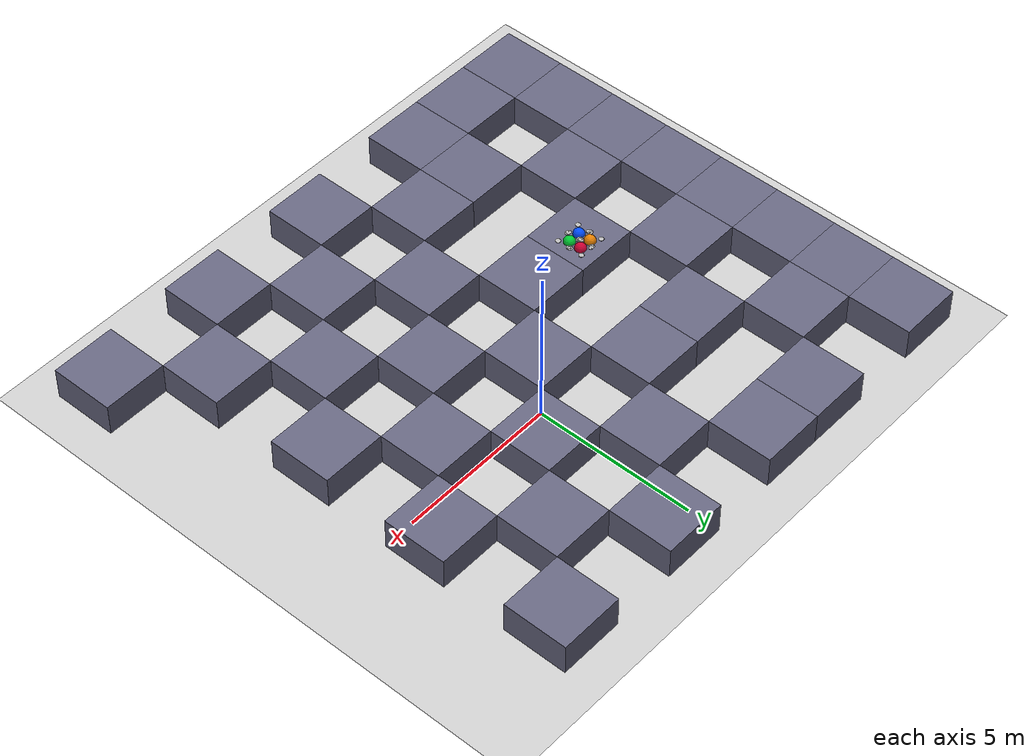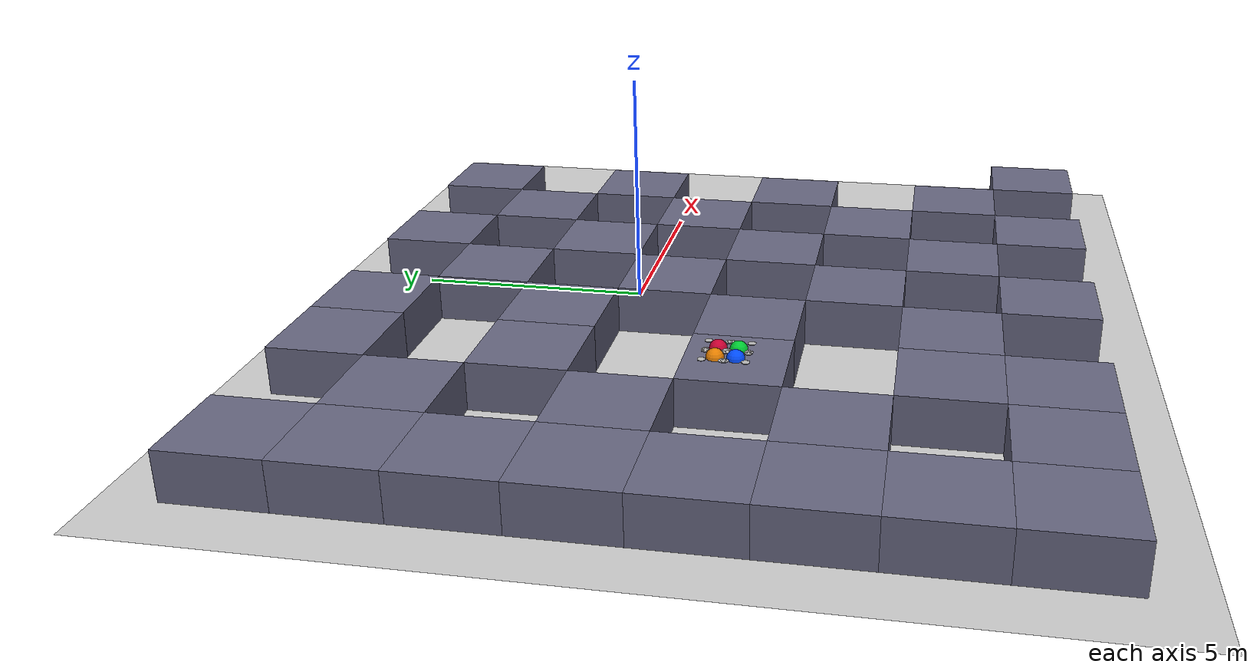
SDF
<?xml version="1.0" ?>
<sdf version="1.8">
  <world name="stage_4_challenging.sdf">

    <!-- Physics -->
    <physics name="2ms" type="ignored">
      <max_step_size>0.002</max_step_size>
      <real_time_factor>0</real_time_factor>
    </physics>

    <!-- Plugins -->
    <plugin filename="gz-sim-physics-system" name="gz::sim::systems::Physics"/>
    <plugin filename="gz-sim-user-commands-system" name="gz::sim::systems::UserCommands"/>
    <plugin filename="gz-sim-sensors-system" name="gz::sim::systems::Sensors">
      <render_engine>ogre2</render_engine>
    </plugin>
    <plugin filename="gz-sim-imu-system" name="gz::sim::systems::Imu"/>

    <!-- Lighting -->
    <light type="directional" name="sun">
      <cast_shadows>true</cast_shadows>
      <pose>0 0 10 0 0 0</pose>
      <diffuse>0.8 0.8 0.8 1</diffuse>
      <specular>0.2 0.2 0.2 1</specular>
      <attenuation>
        <range>1000</range>
        <constant>0.9</constant>
        <linear>0.01</linear>
        <quadratic>0.001</quadratic>
      </attenuation>
      <direction>-0.5 0.1 -0.9</direction>
    </light>

    <!-- Ground Plane -->
    <model name="ground_plane">
      <static>true</static>
      <link name="link">
        <collision name="collision">
          <geometry>
            <plane>
              <normal>0 0 1</normal>
              <size>200 200</size>
            </plane>
          </geometry>
        </collision>
        <visual name="visual">
          <geometry>
            <plane>
              <normal>0 0 1</normal>
              <size>200 200</size>
            </plane>
          </geometry>
          <material>
            <ambient>0.8 0.8 0.8 1</ambient>
            <diffuse>0.8 0.8 0.8 1</diffuse>
          </material>
        </visual>
      </link>
    </model>

    <!-- Challenging difficulty maze walls (38 walls) -->
    <model name="wall_0">
      <static>true</static>
      <pose>-9.0 -9.0 0.5 0 0 0</pose>
      <link name="link">
        <collision name="collision">
          <geometry>
            <box>
              <size>2.0 2.0 1.0</size>
            </box>
          </geometry>
        </collision>
        <visual name="visual">
          <geometry>
            <box>
              <size>2.0 2.0 1.0</size>
            </box>
          </geometry>
          <material>
            <ambient>0.3 0.3 0.4 1</ambient>
            <diffuse>0.4 0.4 0.5 1</diffuse>
          </material>
        </visual>
      </link>
    </model>

    <model name="wall_1">
      <static>true</static>
      <pose>-9.0 -7.0 0.5 0 0 0</pose>
      <link name="link">
        <collision name="collision">
          <geometry>
            <box>
              <size>2.0 2.0 1.0</size>
            </box>
          </geometry>
        </collision>
        <visual name="visual">
          <geometry>
            <box>
              <size>2.0 2.0 1.0</size>
            </box>
          </geometry>
          <material>
            <ambient>0.3 0.3 0.4 1</ambient>
            <diffuse>0.4 0.4 0.5 1</diffuse>
          </material>
        </visual>
      </link>
    </model>

    <model name="wall_2">
      <static>true</static>
      <pose>-9.0 -5.0 0.5 0 0 0</pose>
      <link name="link">
        <collision name="collision">
          <geometry>
            <box>
              <size>2.0 2.0 1.0</size>
            </box>
          </geometry>
        </collision>
        <visual name="visual">
          <geometry>
            <box>
              <size>2.0 2.0 1.0</size>
            </box>
          </geometry>
          <material>
            <ambient>0.3 0.3 0.4 1</ambient>
            <diffuse>0.4 0.4 0.5 1</diffuse>
          </material>
        </visual>
      </link>
    </model>

    <model name="wall_3">
      <static>true</static>
      <pose>-9.0 -3.0 0.5 0 0 0</pose>
      <link name="link">
        <collision name="collision">
          <geometry>
            <box>
              <size>2.0 2.0 1.0</size>
            </box>
          </geometry>
        </collision>
        <visual name="visual">
          <geometry>
            <box>
              <size>2.0 2.0 1.0</size>
            </box>
          </geometry>
          <material>
            <ambient>0.3 0.3 0.4 1</ambient>
            <diffuse>0.4 0.4 0.5 1</diffuse>
          </material>
        </visual>
      </link>
    </model>

    <model name="wall_4">
      <static>true</static>
      <pose>-9.0 -1.0 0.5 0 0 0</pose>
      <link name="link">
        <collision name="collision">
          <geometry>
            <box>
              <size>2.0 2.0 1.0</size>
            </box>
          </geometry>
        </collision>
        <visual name="visual">
          <geometry>
            <box>
              <size>2.0 2.0 1.0</size>
            </box>
          </geometry>
          <material>
            <ambient>0.3 0.3 0.4 1</ambient>
            <diffuse>0.4 0.4 0.5 1</diffuse>
          </material>
        </visual>
      </link>
    </model>

    <model name="wall_5">
      <static>true</static>
      <pose>-9.0 1.0 0.5 0 0 0</pose>
      <link name="link">
        <collision name="collision">
          <geometry>
            <box>
              <size>2.0 2.0 1.0</size>
            </box>
          </geometry>
        </collision>
        <visual name="visual">
          <geometry>
            <box>
              <size>2.0 2.0 1.0</size>
            </box>
          </geometry>
          <material>
            <ambient>0.3 0.3 0.4 1</ambient>
            <diffuse>0.4 0.4 0.5 1</diffuse>
          </material>
        </visual>
      </link>
    </model>

    <model name="wall_6">
      <static>true</static>
      <pose>-9.0 3.0 0.5 0 0 0</pose>
      <link name="link">
        <collision name="collision">
          <geometry>
            <box>
              <size>2.0 2.0 1.0</size>
            </box>
          </geometry>
        </collision>
        <visual name="visual">
          <geometry>
            <box>
              <size>2.0 2.0 1.0</size>
            </box>
          </geometry>
          <material>
            <ambient>0.3 0.3 0.4 1</ambient>
            <diffuse>0.4 0.4 0.5 1</diffuse>
          </material>
        </visual>
      </link>
    </model>

    <model name="wall_7">
      <static>true</static>
      <pose>-9.0 5.0 0.5 0 0 0</pose>
      <link name="link">
        <collision name="collision">
          <geometry>
            <box>
              <size>2.0 2.0 1.0</size>
            </box>
          </geometry>
        </collision>
        <visual name="visual">
          <geometry>
            <box>
              <size>2.0 2.0 1.0</size>
            </box>
          </geometry>
          <material>
            <ambient>0.3 0.3 0.4 1</ambient>
            <diffuse>0.4 0.4 0.5 1</diffuse>
          </material>
        </visual>
      </link>
    </model>

    <model name="wall_8">
      <static>true</static>
      <pose>-7.0 -9.0 0.5 0 0 0</pose>
      <link name="link">
        <collision name="collision">
          <geometry>
            <box>
              <size>2.0 2.0 1.0</size>
            </box>
          </geometry>
        </collision>
        <visual name="visual">
          <geometry>
            <box>
              <size>2.0 2.0 1.0</size>
            </box>
          </geometry>
          <material>
            <ambient>0.3 0.3 0.4 1</ambient>
            <diffuse>0.4 0.4 0.5 1</diffuse>
          </material>
        </visual>
      </link>
    </model>

    <model name="wall_9">
      <static>true</static>
      <pose>-7.0 -5.0 0.5 0 0 0</pose>
      <link name="link">
        <collision name="collision">
          <geometry>
            <box>
              <size>2.0 2.0 1.0</size>
            </box>
          </geometry>
        </collision>
        <visual name="visual">
          <geometry>
            <box>
              <size>2.0 2.0 1.0</size>
            </box>
          </geometry>
          <material>
            <ambient>0.3 0.3 0.4 1</ambient>
            <diffuse>0.4 0.4 0.5 1</diffuse>
          </material>
        </visual>
      </link>
    </model>

    <model name="wall_10">
      <static>true</static>
      <pose>-7.0 -1.0 0.5 0 0 0</pose>
      <link name="link">
        <collision name="collision">
          <geometry>
            <box>
              <size>2.0 2.0 1.0</size>
            </box>
          </geometry>
        </collision>
        <visual name="visual">
          <geometry>
            <box>
              <size>2.0 2.0 1.0</size>
            </box>
          </geometry>
          <material>
            <ambient>0.3 0.3 0.4 1</ambient>
            <diffuse>0.4 0.4 0.5 1</diffuse>
          </material>
        </visual>
      </link>
    </model>

    <model name="wall_11">
      <static>true</static>
      <pose>-7.0 3.0 0.5 0 0 0</pose>
      <link name="link">
        <collision name="collision">
          <geometry>
            <box>
              <size>2.0 2.0 1.0</size>
            </box>
          </geometry>
        </collision>
        <visual name="visual">
          <geometry>
            <box>
              <size>2.0 2.0 1.0</size>
            </box>
          </geometry>
          <material>
            <ambient>0.3 0.3 0.4 1</ambient>
            <diffuse>0.4 0.4 0.5 1</diffuse>
          </material>
        </visual>
      </link>
    </model>

    <model name="wall_12">
      <static>true</static>
      <pose>-5.0 -9.0 0.5 0 0 0</pose>
      <link name="link">
        <collision name="collision">
          <geometry>
            <box>
              <size>2.0 2.0 1.0</size>
            </box>
          </geometry>
        </collision>
        <visual name="visual">
          <geometry>
            <box>
              <size>2.0 2.0 1.0</size>
            </box>
          </geometry>
          <material>
            <ambient>0.3 0.3 0.4 1</ambient>
            <diffuse>0.4 0.4 0.5 1</diffuse>
          </material>
        </visual>
      </link>
    </model>

    <model name="wall_13">
      <static>true</static>
      <pose>-5.0 -7.0 0.5 0 0 0</pose>
      <link name="link">
        <collision name="collision">
          <geometry>
            <box>
              <size>2.0 2.0 1.0</size>
            </box>
          </geometry>
        </collision>
        <visual name="visual">
          <geometry>
            <box>
              <size>2.0 2.0 1.0</size>
            </box>
          </geometry>
          <material>
            <ambient>0.3 0.3 0.4 1</ambient>
            <diffuse>0.4 0.4 0.5 1</diffuse>
          </material>
        </visual>
      </link>
    </model>

    <model name="wall_14">
      <static>true</static>
      <pose>-5.0 -3.0 0.5 0 0 0</pose>
      <link name="link">
        <collision name="collision">
          <geometry>
            <box>
              <size>2.0 2.0 1.0</size>
            </box>
          </geometry>
        </collision>
        <visual name="visual">
          <geometry>
            <box>
              <size>2.0 2.0 1.0</size>
            </box>
          </geometry>
          <material>
            <ambient>0.3 0.3 0.4 1</ambient>
            <diffuse>0.4 0.4 0.5 1</diffuse>
          </material>
        </visual>
      </link>
    </model>

    <model name="wall_15">
      <static>true</static>
      <pose>-5.0 1.0 0.5 0 0 0</pose>
      <link name="link">
        <collision name="collision">
          <geometry>
            <box>
              <size>2.0 2.0 1.0</size>
            </box>
          </geometry>
        </collision>
        <visual name="visual">
          <geometry>
            <box>
              <size>2.0 2.0 1.0</size>
            </box>
          </geometry>
          <material>
            <ambient>0.3 0.3 0.4 1</ambient>
            <diffuse>0.4 0.4 0.5 1</diffuse>
          </material>
        </visual>
      </link>
    </model>

    <model name="wall_16">
      <static>true</static>
      <pose>-5.0 5.0 0.5 0 0 0</pose>
      <link name="link">
        <collision name="collision">
          <geometry>
            <box>
              <size>2.0 2.0 1.0</size>
            </box>
          </geometry>
        </collision>
        <visual name="visual">
          <geometry>
            <box>
              <size>2.0 2.0 1.0</size>
            </box>
          </geometry>
          <material>
            <ambient>0.3 0.3 0.4 1</ambient>
            <diffuse>0.4 0.4 0.5 1</diffuse>
          </material>
        </visual>
      </link>
    </model>

    <model name="wall_17">
      <static>true</static>
      <pose>-3.0 -7.0 0.5 0 0 0</pose>
      <link name="link">
        <collision name="collision">
          <geometry>
            <box>
              <size>2.0 2.0 1.0</size>
            </box>
          </geometry>
        </collision>
        <visual name="visual">
          <geometry>
            <box>
              <size>2.0 2.0 1.0</size>
            </box>
          </geometry>
          <material>
            <ambient>0.3 0.3 0.4 1</ambient>
            <diffuse>0.4 0.4 0.5 1</diffuse>
          </material>
        </visual>
      </link>
    </model>

    <model name="wall_18">
      <static>true</static>
      <pose>-3.0 -3.0 0.5 0 0 0</pose>
      <link name="link">
        <collision name="collision">
          <geometry>
            <box>
              <size>2.0 2.0 1.0</size>
            </box>
          </geometry>
        </collision>
        <visual name="visual">
          <geometry>
            <box>
              <size>2.0 2.0 1.0</size>
            </box>
          </geometry>
          <material>
            <ambient>0.3 0.3 0.4 1</ambient>
            <diffuse>0.4 0.4 0.5 1</diffuse>
          </material>
        </visual>
      </link>
    </model>

    <model name="wall_19">
      <static>true</static>
      <pose>-3.0 1.0 0.5 0 0 0</pose>
      <link name="link">
        <collision name="collision">
          <geometry>
            <box>
              <size>2.0 2.0 1.0</size>
            </box>
          </geometry>
        </collision>
        <visual name="visual">
          <geometry>
            <box>
              <size>2.0 2.0 1.0</size>
            </box>
          </geometry>
          <material>
            <ambient>0.3 0.3 0.4 1</ambient>
            <diffuse>0.4 0.4 0.5 1</diffuse>
          </material>
        </visual>
      </link>
    </model>

    <model name="wall_20">
      <static>true</static>
      <pose>-3.0 5.0 0.5 0 0 0</pose>
      <link name="link">
        <collision name="collision">
          <geometry>
            <box>
              <size>2.0 2.0 1.0</size>
            </box>
          </geometry>
        </collision>
        <visual name="visual">
          <geometry>
            <box>
              <size>2.0 2.0 1.0</size>
            </box>
          </geometry>
          <material>
            <ambient>0.3 0.3 0.4 1</ambient>
            <diffuse>0.4 0.4 0.5 1</diffuse>
          </material>
        </visual>
      </link>
    </model>

    <model name="wall_21">
      <static>true</static>
      <pose>-1.0 -9.0 0.5 0 0 0</pose>
      <link name="link">
        <collision name="collision">
          <geometry>
            <box>
              <size>2.0 2.0 1.0</size>
            </box>
          </geometry>
        </collision>
        <visual name="visual">
          <geometry>
            <box>
              <size>2.0 2.0 1.0</size>
            </box>
          </geometry>
          <material>
            <ambient>0.3 0.3 0.4 1</ambient>
            <diffuse>0.4 0.4 0.5 1</diffuse>
          </material>
        </visual>
      </link>
    </model>

    <model name="wall_22">
      <static>true</static>
      <pose>-1.0 -5.0 0.5 0 0 0</pose>
      <link name="link">
        <collision name="collision">
          <geometry>
            <box>
              <size>2.0 2.0 1.0</size>
            </box>
          </geometry>
        </collision>
        <visual name="visual">
          <geometry>
            <box>
              <size>2.0 2.0 1.0</size>
            </box>
          </geometry>
          <material>
            <ambient>0.3 0.3 0.4 1</ambient>
            <diffuse>0.4 0.4 0.5 1</diffuse>
          </material>
        </visual>
      </link>
    </model>

    <model name="wall_23">
      <static>true</static>
      <pose>-1.0 -1.0 0.5 0 0 0</pose>
      <link name="link">
        <collision name="collision">
          <geometry>
            <box>
              <size>2.0 2.0 1.0</size>
            </box>
          </geometry>
        </collision>
        <visual name="visual">
          <geometry>
            <box>
              <size>2.0 2.0 1.0</size>
            </box>
          </geometry>
          <material>
            <ambient>0.3 0.3 0.4 1</ambient>
            <diffuse>0.4 0.4 0.5 1</diffuse>
          </material>
        </visual>
      </link>
    </model>

    <model name="wall_24">
      <static>true</static>
      <pose>-1.0 3.0 0.5 0 0 0</pose>
      <link name="link">
        <collision name="collision">
          <geometry>
            <box>
              <size>2.0 2.0 1.0</size>
            </box>
          </geometry>
        </collision>
        <visual name="visual">
          <geometry>
            <box>
              <size>2.0 2.0 1.0</size>
            </box>
          </geometry>
          <material>
            <ambient>0.3 0.3 0.4 1</ambient>
            <diffuse>0.4 0.4 0.5 1</diffuse>
          </material>
        </visual>
      </link>
    </model>

    <model name="wall_25">
      <static>true</static>
      <pose>1.0 -7.0 0.5 0 0 0</pose>
      <link name="link">
        <collision name="collision">
          <geometry>
            <box>
              <size>2.0 2.0 1.0</size>
            </box>
          </geometry>
        </collision>
        <visual name="visual">
          <geometry>
            <box>
              <size>2.0 2.0 1.0</size>
            </box>
          </geometry>
          <material>
            <ambient>0.3 0.3 0.4 1</ambient>
            <diffuse>0.4 0.4 0.5 1</diffuse>
          </material>
        </visual>
      </link>
    </model>

    <model name="wall_26">
      <static>true</static>
      <pose>1.0 -3.0 0.5 0 0 0</pose>
      <link name="link">
        <collision name="collision">
          <geometry>
            <box>
              <size>2.0 2.0 1.0</size>
            </box>
          </geometry>
        </collision>
        <visual name="visual">
          <geometry>
            <box>
              <size>2.0 2.0 1.0</size>
            </box>
          </geometry>
          <material>
            <ambient>0.3 0.3 0.4 1</ambient>
            <diffuse>0.4 0.4 0.5 1</diffuse>
          </material>
        </visual>
      </link>
    </model>

    <model name="wall_27">
      <static>true</static>
      <pose>1.0 1.0 0.5 0 0 0</pose>
      <link name="link">
        <collision name="collision">
          <geometry>
            <box>
              <size>2.0 2.0 1.0</size>
            </box>
          </geometry>
        </collision>
        <visual name="visual">
          <geometry>
            <box>
              <size>2.0 2.0 1.0</size>
            </box>
          </geometry>
          <material>
            <ambient>0.3 0.3 0.4 1</ambient>
            <diffuse>0.4 0.4 0.5 1</diffuse>
          </material>
        </visual>
      </link>
    </model>

    <model name="wall_28">
      <static>true</static>
      <pose>1.0 5.0 0.5 0 0 0</pose>
      <link name="link">
        <collision name="collision">
          <geometry>
            <box>
              <size>2.0 2.0 1.0</size>
            </box>
          </geometry>
        </collision>
        <visual name="visual">
          <geometry>
            <box>
              <size>2.0 2.0 1.0</size>
            </box>
          </geometry>
          <material>
            <ambient>0.3 0.3 0.4 1</ambient>
            <diffuse>0.4 0.4 0.5 1</diffuse>
          </material>
        </visual>
      </link>
    </model>

    <model name="wall_29">
      <static>true</static>
      <pose>3.0 -9.0 0.5 0 0 0</pose>
      <link name="link">
        <collision name="collision">
          <geometry>
            <box>
              <size>2.0 2.0 1.0</size>
            </box>
          </geometry>
        </collision>
        <visual name="visual">
          <geometry>
            <box>
              <size>2.0 2.0 1.0</size>
            </box>
          </geometry>
          <material>
            <ambient>0.3 0.3 0.4 1</ambient>
            <diffuse>0.4 0.4 0.5 1</diffuse>
          </material>
        </visual>
      </link>
    </model>

    <model name="wall_30">
      <static>true</static>
      <pose>3.0 -5.0 0.5 0 0 0</pose>
      <link name="link">
        <collision name="collision">
          <geometry>
            <box>
              <size>2.0 2.0 1.0</size>
            </box>
          </geometry>
        </collision>
        <visual name="visual">
          <geometry>
            <box>
              <size>2.0 2.0 1.0</size>
            </box>
          </geometry>
          <material>
            <ambient>0.3 0.3 0.4 1</ambient>
            <diffuse>0.4 0.4 0.5 1</diffuse>
          </material>
        </visual>
      </link>
    </model>

    <model name="wall_31">
      <static>true</static>
      <pose>3.0 -1.0 0.5 0 0 0</pose>
      <link name="link">
        <collision name="collision">
          <geometry>
            <box>
              <size>2.0 2.0 1.0</size>
            </box>
          </geometry>
        </collision>
        <visual name="visual">
          <geometry>
            <box>
              <size>2.0 2.0 1.0</size>
            </box>
          </geometry>
          <material>
            <ambient>0.3 0.3 0.4 1</ambient>
            <diffuse>0.4 0.4 0.5 1</diffuse>
          </material>
        </visual>
      </link>
    </model>

    <model name="wall_32">
      <static>true</static>
      <pose>3.0 3.0 0.5 0 0 0</pose>
      <link name="link">
        <collision name="collision">
          <geometry>
            <box>
              <size>2.0 2.0 1.0</size>
            </box>
          </geometry>
        </collision>
        <visual name="visual">
          <geometry>
            <box>
              <size>2.0 2.0 1.0</size>
            </box>
          </geometry>
          <material>
            <ambient>0.3 0.3 0.4 1</ambient>
            <diffuse>0.4 0.4 0.5 1</diffuse>
          </material>
        </visual>
      </link>
    </model>

    <model name="wall_33">
      <static>true</static>
      <pose>5.0 -7.0 0.5 0 0 0</pose>
      <link name="link">
        <collision name="collision">
          <geometry>
            <box>
              <size>2.0 2.0 1.0</size>
            </box>
          </geometry>
        </collision>
        <visual name="visual">
          <geometry>
            <box>
              <size>2.0 2.0 1.0</size>
            </box>
          </geometry>
          <material>
            <ambient>0.3 0.3 0.4 1</ambient>
            <diffuse>0.4 0.4 0.5 1</diffuse>
          </material>
        </visual>
      </link>
    </model>

    <model name="wall_34">
      <static>true</static>
      <pose>5.0 -3.0 0.5 0 0 0</pose>
      <link name="link">
        <collision name="collision">
          <geometry>
            <box>
              <size>2.0 2.0 1.0</size>
            </box>
          </geometry>
        </collision>
        <visual name="visual">
          <geometry>
            <box>
              <size>2.0 2.0 1.0</size>
            </box>
          </geometry>
          <material>
            <ambient>0.3 0.3 0.4 1</ambient>
            <diffuse>0.4 0.4 0.5 1</diffuse>
          </material>
        </visual>
      </link>
    </model>

    <model name="wall_35">
      <static>true</static>
      <pose>5.0 1.0 0.5 0 0 0</pose>
      <link name="link">
        <collision name="collision">
          <geometry>
            <box>
              <size>2.0 2.0 1.0</size>
            </box>
          </geometry>
        </collision>
        <visual name="visual">
          <geometry>
            <box>
              <size>2.0 2.0 1.0</size>
            </box>
          </geometry>
          <material>
            <ambient>0.3 0.3 0.4 1</ambient>
            <diffuse>0.4 0.4 0.5 1</diffuse>
          </material>
        </visual>
      </link>
    </model>

    <model name="wall_36">
      <static>true</static>
      <pose>5.0 5.0 0.5 0 0 0</pose>
      <link name="link">
        <collision name="collision">
          <geometry>
            <box>
              <size>2.0 2.0 1.0</size>
            </box>
          </geometry>
        </collision>
        <visual name="visual">
          <geometry>
            <box>
              <size>2.0 2.0 1.0</size>
            </box>
          </geometry>
          <material>
            <ambient>0.3 0.3 0.4 1</ambient>
            <diffuse>0.4 0.4 0.5 1</diffuse>
          </material>
        </visual>
      </link>
    </model>

    <model name="wall_37">
      <static>true</static>
      <pose>7.0 -9.0 0.5 0 0 0</pose>
      <link name="link">
        <collision name="collision">
          <geometry>
            <box>
              <size>2.0 2.0 1.0</size>
            </box>
          </geometry>
        </collision>
        <visual name="visual">
          <geometry>
            <box>
              <size>2.0 2.0 1.0</size>
            </box>
          </geometry>
          <material>
            <ambient>0.3 0.3 0.4 1</ambient>
            <diffuse>0.4 0.4 0.5 1</diffuse>
          </material>
        </visual>
      </link>
    </model>

    <!-- Start Point (Green) -->
    <model name="start_marker">
      <static>true</static>
      <pose>-5.0 -3.0 0.001 0 0 0</pose>
      <link name="link">
        <visual name="visual">
          <geometry>
            <cylinder>
              <radius>0.5</radius>
              <length>0.002</length>
            </cylinder>
          </geometry>
          <material>
            <ambient>1 1 1 1</ambient>
            <diffuse>1 1 1 1</diffuse>
            <emissive>0 0 0 1</emissive>
          </material>
        </visual>
      </link>
    </model>

    <!-- End Point (Red) -->
    <model name="end_marker">
      <static>true</static>
      <pose>1.0 5.0 0.001 0 0 0</pose>
      <link name="link">
        <visual name="visual">
          <geometry>
            <cylinder>
              <radius>0.5</radius>
              <length>0.002</length>
            </cylinder>
          </geometry>
          <material>
            <ambient>0 0 0 1</ambient>
            <diffuse>0 0 0 1</diffuse>
            <emissive>0 0 0 1</emissive>
          </material>
        </visual>
      </link>
    </model>

    <!-- Multi-UAV agents (each uses its own cmd_vel/odom namespace) -->
    <include>
      <uri>file:///home/aiz/下载/基于ROS2 Jazzy与Gazebo Harmonic仿真环境的迷宫求解机器人(2)/src/models/uav1</uri>
      <name>uav1</name>
      <pose>-5.000 -3.000 1.00 0 0 0</pose>
    </include>

    <include>
      <uri>file:///home/aiz/下载/基于ROS2 Jazzy与Gazebo Harmonic仿真环境的迷宫求解机器人(2)/src/models/uav2</uri>
      <name>uav2</name>
      <pose>-4.600 -3.000 1.00 0 0 0</pose>
    </include>

    <include>
      <uri>file:///home/aiz/下载/基于ROS2 Jazzy与Gazebo Harmonic仿真环境的迷宫求解机器人(2)/src/models/uav3</uri>
      <name>uav3</name>
      <pose>-5.000 -2.600 1.00 0 0 0</pose>
    </include>

    <include>
      <uri>file:///home/aiz/下载/基于ROS2 Jazzy与Gazebo Harmonic仿真环境的迷宫求解机器人(2)/src/models/uav4</uri>
      <name>uav4</name>
      <pose>-4.600 -2.600 1.00 0 0 0</pose>
    </include>

  </world>
</sdf>

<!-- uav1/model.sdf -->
<sdf version="1.8">
  <model name="uav1">
    <pose>0 0 0 0 0 0</pose>
    <static>false</static>
    <self_collide>false</self_collide>

    <link name="base_link">
      <pose>0 0 0 0 0 0</pose>
      <inertial>
        <mass>1.2</mass>
        <inertia>
          <ixx>0.02</ixx>
          <iyy>0.02</iyy>
          <izz>0.04</izz>
        </inertia>
      </inertial>
      <collision name="collision">
        <geometry>
          <sphere>
            <radius>0.18</radius>
          </sphere>
        </geometry>
      </collision>
      <visual name="body_visual">
        <geometry>
          <sphere>
            <radius>0.18</radius>
          </sphere>
        </geometry>
        <material>
          <ambient>0.0 0.2 1.0 1</ambient>
          <diffuse>0.0 0.3 1.0 1</diffuse>
          <emissive>0.0 0.1 0.5 1</emissive>
        </material>
      </visual>
      <sensor name="lidar" type="gpu_lidar">
        <pose>0 0 0 0 0 0</pose>
        <topic>uav1/lidar</topic>
        <update_rate>15</update_rate>
        <ray>
          <scan>
            <horizontal>
              <samples>36</samples>
              <resolution>1</resolution>
              <min_angle>-3.14159</min_angle>
              <max_angle>3.14159</max_angle>
            </horizontal>
          </scan>
          <range>
            <min>0.2</min>
            <max>15.0</max>
            <resolution>0.01</resolution>
          </range>
        </ray>
        <always_on>1</always_on>
        <visualize>false</visualize>
      </sensor>
    </link>

    <link name="rotor_0">
      <pose>0.22 0.22 0.05 0 0 0</pose>
      <inertial>
        <mass>0.03</mass>
        <inertia>
          <ixx>1e-5</ixx>
          <iyy>1e-5</iyy>
          <izz>2e-5</izz>
        </inertia>
      </inertial>
      <visual name="visual">
        <geometry>
          <cylinder>
            <radius>0.08</radius>
            <length>0.01</length>
          </cylinder>
        </geometry>
      </visual>
    </link>
    <link name="rotor_1">
      <pose>-0.22 0.22 0.05 0 0 0</pose>
      <inertial>
        <mass>0.03</mass>
        <inertia>
          <ixx>1e-5</ixx>
          <iyy>1e-5</iyy>
          <izz>2e-5</izz>
        </inertia>
      </inertial>
      <visual name="visual">
        <geometry>
          <cylinder>
            <radius>0.08</radius>
            <length>0.01</length>
          </cylinder>
        </geometry>
      </visual>
    </link>
    <link name="rotor_2">
      <pose>-0.22 -0.22 0.05 0 0 0</pose>
      <inertial>
        <mass>0.03</mass>
        <inertia>
          <ixx>1e-5</ixx>
          <iyy>1e-5</iyy>
          <izz>2e-5</izz>
        </inertia>
      </inertial>
      <visual name="visual">
        <geometry>
          <cylinder>
            <radius>0.08</radius>
            <length>0.01</length>
          </cylinder>
        </geometry>
      </visual>
    </link>
    <link name="rotor_3">
      <pose>0.22 -0.22 0.05 0 0 0</pose>
      <inertial>
        <mass>0.03</mass>
        <inertia>
          <ixx>1e-5</ixx>
          <iyy>1e-5</iyy>
          <izz>2e-5</izz>
        </inertia>
      </inertial>
      <visual name="visual">
        <geometry>
          <cylinder>
            <radius>0.08</radius>
            <length>0.01</length>
          </cylinder>
        </geometry>
      </visual>
    </link>

    <joint name="rotor_0_joint" type="revolute">
      <parent>base_link</parent>
      <child>rotor_0</child>
      <axis>
        <xyz>0 0 1</xyz>
        <limit>
          <lower>-1e16</lower>
          <upper>1e16</upper>
        </limit>
      </axis>
    </joint>
    <joint name="rotor_1_joint" type="revolute">
      <parent>base_link</parent>
      <child>rotor_1</child>
      <axis>
        <xyz>0 0 1</xyz>
        <limit>
          <lower>-1e16</lower>
          <upper>1e16</upper>
        </limit>
      </axis>
    </joint>
    <joint name="rotor_2_joint" type="revolute">
      <parent>base_link</parent>
      <child>rotor_2</child>
      <axis>
        <xyz>0 0 1</xyz>
        <limit>
          <lower>-1e16</lower>
          <upper>1e16</upper>
        </limit>
      </axis>
    </joint>
    <joint name="rotor_3_joint" type="revolute">
      <parent>base_link</parent>
      <child>rotor_3</child>
      <axis>
        <xyz>0 0 1</xyz>
        <limit>
          <lower>-1e16</lower>
          <upper>1e16</upper>
        </limit>
      </axis>
    </joint>

    <plugin filename="gz-sim-multicopter-motor-model-system" name="gz::sim::systems::MulticopterMotorModel">
      <robotNamespace>uav1</robotNamespace>
      <jointName>rotor_0_joint</jointName>
      <linkName>rotor_0</linkName>
      <turningDirection>ccw</turningDirection>
      <timeConstantUp>0.0182</timeConstantUp>
      <timeConstantDown>0.0182</timeConstantDown>
      <maxRotVelocity>1000.0</maxRotVelocity>
      <motorConstant>1.269e-05</motorConstant>
      <momentConstant>0.016754</momentConstant>
      <commandSubTopic>command/motor_speed</commandSubTopic>
      <actuator_number>0</actuator_number>
      <rotorDragCoefficient>2.0673e-04</rotorDragCoefficient>
      <rollingMomentCoefficient>0</rollingMomentCoefficient>
      <motorSpeedPubTopic>motor_speed/0</motorSpeedPubTopic>
      <rotorVelocitySlowdownSim>2</rotorVelocitySlowdownSim>
      <motorType>velocity</motorType>
    </plugin>
    <plugin filename="gz-sim-multicopter-motor-model-system" name="gz::sim::systems::MulticopterMotorModel">
      <robotNamespace>uav1</robotNamespace>
      <jointName>rotor_1_joint</jointName>
      <linkName>rotor_1</linkName>
      <turningDirection>cw</turningDirection>
      <timeConstantUp>0.0182</timeConstantUp>
      <timeConstantDown>0.0182</timeConstantDown>
      <maxRotVelocity>1000.0</maxRotVelocity>
      <motorConstant>1.269e-05</motorConstant>
      <momentConstant>0.016754</momentConstant>
      <commandSubTopic>command/motor_speed</commandSubTopic>
      <actuator_number>1</actuator_number>
      <rotorDragCoefficient>2.0673e-04</rotorDragCoefficient>
      <rollingMomentCoefficient>0</rollingMomentCoefficient>
      <motorSpeedPubTopic>motor_speed/1</motorSpeedPubTopic>
      <rotorVelocitySlowdownSim>2</rotorVelocitySlowdownSim>
      <motorType>velocity</motorType>
    </plugin>
    <plugin filename="gz-sim-multicopter-motor-model-system" name="gz::sim::systems::MulticopterMotorModel">
      <robotNamespace>uav1</robotNamespace>
      <jointName>rotor_2_joint</jointName>
      <linkName>rotor_2</linkName>
      <turningDirection>ccw</turningDirection>
      <timeConstantUp>0.0182</timeConstantUp>
      <timeConstantDown>0.0182</timeConstantDown>
      <maxRotVelocity>1000.0</maxRotVelocity>
      <motorConstant>1.269e-05</motorConstant>
      <momentConstant>0.016754</momentConstant>
      <commandSubTopic>command/motor_speed</commandSubTopic>
      <actuator_number>2</actuator_number>
      <rotorDragCoefficient>2.0673e-04</rotorDragCoefficient>
      <rollingMomentCoefficient>0</rollingMomentCoefficient>
      <motorSpeedPubTopic>motor_speed/2</motorSpeedPubTopic>
      <rotorVelocitySlowdownSim>2</rotorVelocitySlowdownSim>
      <motorType>velocity</motorType>
    </plugin>
    <plugin filename="gz-sim-multicopter-motor-model-system" name="gz::sim::systems::MulticopterMotorModel">
      <robotNamespace>uav1</robotNamespace>
      <jointName>rotor_3_joint</jointName>
      <linkName>rotor_3</linkName>
      <turningDirection>cw</turningDirection>
      <timeConstantUp>0.0182</timeConstantUp>
      <timeConstantDown>0.0182</timeConstantDown>
      <maxRotVelocity>1000.0</maxRotVelocity>
      <motorConstant>1.269e-05</motorConstant>
      <momentConstant>0.016754</momentConstant>
      <commandSubTopic>command/motor_speed</commandSubTopic>
      <actuator_number>3</actuator_number>
      <rotorDragCoefficient>2.0673e-04</rotorDragCoefficient>
      <rollingMomentCoefficient>0</rollingMomentCoefficient>
      <motorSpeedPubTopic>motor_speed/3</motorSpeedPubTopic>
      <rotorVelocitySlowdownSim>2</rotorVelocitySlowdownSim>
      <motorType>velocity</motorType>
    </plugin>
    <plugin filename="gz-sim-multicopter-control-system" name="gz::sim::systems::MulticopterVelocityControl">
      <robotNamespace>uav1</robotNamespace>
      <commandSubTopic>cmd_vel</commandSubTopic>
      <comLinkName>base_link</comLinkName>
      <velocityGain>2.7 2.7 2.9</velocityGain>
      <attitudeGain>2 2 0.2</attitudeGain>
      <angularRateGain>0.4 0.45 0.18</angularRateGain>
      <maximumLinearAcceleration>2.5 2.5 2.0</maximumLinearAcceleration>
      <rotorConfiguration>
        <rotor>
          <jointName>rotor_0_joint</jointName>
          <forceConstant>1.269e-05</forceConstant>
          <momentConstant>0.016754</momentConstant>
          <direction>1</direction>
        </rotor>
        <rotor>
          <jointName>rotor_1_joint</jointName>
          <forceConstant>1.269e-05</forceConstant>
          <momentConstant>0.016754</momentConstant>
          <direction>-1</direction>
        </rotor>
        <rotor>
          <jointName>rotor_2_joint</jointName>
          <forceConstant>1.269e-05</forceConstant>
          <momentConstant>0.016754</momentConstant>
          <direction>1</direction>
        </rotor>
        <rotor>
          <jointName>rotor_3_joint</jointName>
          <forceConstant>1.269e-05</forceConstant>
          <momentConstant>0.016754</momentConstant>
          <direction>-1</direction>
        </rotor>
      </rotorConfiguration>
    </plugin>
    <plugin filename="gz-sim-odometry-publisher-system" name="gz::sim::systems::OdometryPublisher">
      <dimensions>3</dimensions>
    </plugin>
  </model>
</sdf>

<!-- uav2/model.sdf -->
<sdf version="1.8">
  <model name="uav2">
    <pose>0 0 0 0 0 0</pose>
    <static>false</static>
    <self_collide>false</self_collide>

    <link name="base_link">
      <pose>0 0 0 0 0 0</pose>
      <inertial>
        <mass>1.2</mass>
        <inertia>
          <ixx>0.02</ixx>
          <iyy>0.02</iyy>
          <izz>0.04</izz>
        </inertia>
      </inertial>

      <collision name="collision">
        <geometry>
          <sphere>
            <radius>0.18</radius>
          </sphere>
        </geometry>
      </collision>

      <visual name="visual">
        <geometry>
          <sphere>
            <radius>0.18</radius>
          </sphere>
        </geometry>
        <material>
          <ambient>0.0 1.0 0.2 1</ambient>
          <diffuse>0.0 0.8 0.2 1</diffuse>
          <emissive>0.0 0.3 0.1 1</emissive>
        </material>
      </visual>
      <sensor name="lidar" type="gpu_lidar">
        <pose>0 0 0 0 0 0</pose>
        <topic>uav2/lidar</topic>
        <update_rate>15</update_rate>
        <ray>
          <scan>
            <horizontal>
              <samples>36</samples>
              <resolution>1</resolution>
              <min_angle>-3.14159</min_angle>
              <max_angle>3.14159</max_angle>
            </horizontal>
          </scan>
          <range>
            <min>0.2</min>
            <max>15.0</max>
            <resolution>0.01</resolution>
          </range>
        </ray>
        <always_on>1</always_on>
        <visualize>false</visualize>
      </sensor>
    </link>
    <link name="rotor_0">
      <pose>0.22 0.22 0.05 0 0 0</pose>
      <inertial>
        <mass>0.03</mass>
        <inertia>
          <ixx>1e-5</ixx>
          <iyy>1e-5</iyy>
          <izz>2e-5</izz>
        </inertia>
      </inertial>
      <visual name="visual">
        <geometry>
          <cylinder>
            <radius>0.08</radius>
            <length>0.01</length>
          </cylinder>
        </geometry>
      </visual>
    </link>
    <link name="rotor_1">
      <pose>-0.22 0.22 0.05 0 0 0</pose>
      <inertial>
        <mass>0.03</mass>
        <inertia>
          <ixx>1e-5</ixx>
          <iyy>1e-5</iyy>
          <izz>2e-5</izz>
        </inertia>
      </inertial>
      <visual name="visual">
        <geometry>
          <cylinder>
            <radius>0.08</radius>
            <length>0.01</length>
          </cylinder>
        </geometry>
      </visual>
    </link>
    <link name="rotor_2">
      <pose>-0.22 -0.22 0.05 0 0 0</pose>
      <inertial>
        <mass>0.03</mass>
        <inertia>
          <ixx>1e-5</ixx>
          <iyy>1e-5</iyy>
          <izz>2e-5</izz>
        </inertia>
      </inertial>
      <visual name="visual">
        <geometry>
          <cylinder>
            <radius>0.08</radius>
            <length>0.01</length>
          </cylinder>
        </geometry>
      </visual>
    </link>
    <link name="rotor_3">
      <pose>0.22 -0.22 0.05 0 0 0</pose>
      <inertial>
        <mass>0.03</mass>
        <inertia>
          <ixx>1e-5</ixx>
          <iyy>1e-5</iyy>
          <izz>2e-5</izz>
        </inertia>
      </inertial>
      <visual name="visual">
        <geometry>
          <cylinder>
            <radius>0.08</radius>
            <length>0.01</length>
          </cylinder>
        </geometry>
      </visual>
    </link>
    <joint name="rotor_0_joint" type="revolute">
      <parent>base_link</parent>
      <child>rotor_0</child>
      <axis>
        <xyz>0 0 1</xyz>
        <limit>
          <lower>-1e16</lower>
          <upper>1e16</upper>
        </limit>
      </axis>
    </joint>

    <joint name="rotor_1_joint" type="revolute">
      <parent>base_link</parent>
      <child>rotor_1</child>
      <axis>
        <xyz>0 0 1</xyz>
        <limit>
          <lower>-1e16</lower>
          <upper>1e16</upper>
        </limit>
      </axis>
    </joint>
    <joint name="rotor_2_joint" type="revolute">
      <parent>base_link</parent>
      <child>rotor_2</child>
      <axis>
        <xyz>0 0 1</xyz>
        <limit>
          <lower>-1e16</lower>
          <upper>1e16</upper>
        </limit>
      </axis>
    </joint>
    <joint name="rotor_3_joint" type="revolute">
      <parent>base_link</parent>
      <child>rotor_3</child>
      <axis>
        <xyz>0 0 1</xyz>
        <limit>
          <lower>-1e16</lower>
          <upper>1e16</upper>
        </limit>
      </axis>
    </joint>
    <plugin filename="gz-sim-multicopter-motor-model-system" name="gz::sim::systems::MulticopterMotorModel">
      <robotNamespace>uav2</robotNamespace>
      <jointName>rotor_0_joint</jointName>
      <linkName>rotor_0</linkName>
      <turningDirection>ccw</turningDirection>
      <timeConstantUp>0.0182</timeConstantUp>
      <timeConstantDown>0.0182</timeConstantDown>
      <maxRotVelocity>1000.0</maxRotVelocity>
      <motorConstant>1.269e-05</motorConstant>
      <momentConstant>0.016754</momentConstant>
      <commandSubTopic>command/motor_speed</commandSubTopic>
      <actuator_number>0</actuator_number>
      <rotorDragCoefficient>2.0673e-04</rotorDragCoefficient>
      <rollingMomentCoefficient>0</rollingMomentCoefficient>
      <motorSpeedPubTopic>motor_speed/0</motorSpeedPubTopic>
      <rotorVelocitySlowdownSim>2</rotorVelocitySlowdownSim>
      <motorType>velocity</motorType>
    </plugin>
    <plugin filename="gz-sim-multicopter-motor-model-system" name="gz::sim::systems::MulticopterMotorModel">
      <robotNamespace>uav2</robotNamespace>
      <jointName>rotor_1_joint</jointName>
      <linkName>rotor_1</linkName>
      <turningDirection>cw</turningDirection>
      <timeConstantUp>0.0182</timeConstantUp>
      <timeConstantDown>0.0182</timeConstantDown>
      <maxRotVelocity>1000.0</maxRotVelocity>
      <motorConstant>1.269e-05</motorConstant>
      <momentConstant>0.016754</momentConstant>
      <commandSubTopic>command/motor_speed</commandSubTopic>
      <actuator_number>1</actuator_number>
      <rotorDragCoefficient>2.0673e-04</rotorDragCoefficient>
      <rollingMomentCoefficient>0</rollingMomentCoefficient>
      <motorSpeedPubTopic>motor_speed/1</motorSpeedPubTopic>
      <rotorVelocitySlowdownSim>2</rotorVelocitySlowdownSim>
      <motorType>velocity</motorType>
    </plugin>
    <plugin filename="gz-sim-multicopter-motor-model-system" name="gz::sim::systems::MulticopterMotorModel">
      <robotNamespace>uav2</robotNamespace>
      <jointName>rotor_2_joint</jointName>
      <linkName>rotor_2</linkName>
      <turningDirection>ccw</turningDirection>
      <timeConstantUp>0.0182</timeConstantUp>
      <timeConstantDown>0.0182</timeConstantDown>
      <maxRotVelocity>1000.0</maxRotVelocity>
      <motorConstant>1.269e-05</motorConstant>
      <momentConstant>0.016754</momentConstant>
      <commandSubTopic>command/motor_speed</commandSubTopic>
      <actuator_number>2</actuator_number>
      <rotorDragCoefficient>2.0673e-04</rotorDragCoefficient>
      <rollingMomentCoefficient>0</rollingMomentCoefficient>
      <motorSpeedPubTopic>motor_speed/2</motorSpeedPubTopic>
      <rotorVelocitySlowdownSim>2</rotorVelocitySlowdownSim>
      <motorType>velocity</motorType>
    </plugin>
    <plugin filename="gz-sim-multicopter-motor-model-system" name="gz::sim::systems::MulticopterMotorModel">
      <robotNamespace>uav2</robotNamespace>
      <jointName>rotor_3_joint</jointName>
      <linkName>rotor_3</linkName>
      <turningDirection>cw</turningDirection>
      <timeConstantUp>0.0182</timeConstantUp>
      <timeConstantDown>0.0182</timeConstantDown>
      <maxRotVelocity>1000.0</maxRotVelocity>
      <motorConstant>1.269e-05</motorConstant>
      <momentConstant>0.016754</momentConstant>
      <commandSubTopic>command/motor_speed</commandSubTopic>
      <actuator_number>3</actuator_number>
      <rotorDragCoefficient>2.0673e-04</rotorDragCoefficient>
      <rollingMomentCoefficient>0</rollingMomentCoefficient>
      <motorSpeedPubTopic>motor_speed/3</motorSpeedPubTopic>
      <rotorVelocitySlowdownSim>2</rotorVelocitySlowdownSim>
      <motorType>velocity</motorType>
    </plugin>
    <plugin filename="gz-sim-multicopter-control-system" name="gz::sim::systems::MulticopterVelocityControl">
      <robotNamespace>uav2</robotNamespace>
      <commandSubTopic>cmd_vel</commandSubTopic>
      <comLinkName>base_link</comLinkName>
      <velocityGain>2.7 2.7 2.9</velocityGain>
      <attitudeGain>2 2 0.2</attitudeGain>
      <angularRateGain>0.4 0.45 0.18</angularRateGain>
      <maximumLinearAcceleration>2.5 2.5 2.0</maximumLinearAcceleration>
      <rotorConfiguration>
        <rotor><jointName>rotor_0_joint</jointName><forceConstant>1.269e-05</forceConstant><momentConstant>0.016754</momentConstant><direction>1</direction></rotor>
        <rotor><jointName>rotor_1_joint</jointName><forceConstant>1.269e-05</forceConstant><momentConstant>0.016754</momentConstant><direction>-1</direction></rotor>
        <rotor><jointName>rotor_2_joint</jointName><forceConstant>1.269e-05</forceConstant><momentConstant>0.016754</momentConstant><direction>1</direction></rotor>
        <rotor><jointName>rotor_3_joint</jointName><forceConstant>1.269e-05</forceConstant><momentConstant>0.016754</momentConstant><direction>-1</direction></rotor>
      </rotorConfiguration>
    </plugin>
    <plugin filename="gz-sim-odometry-publisher-system" name="gz::sim::systems::OdometryPublisher">
      <dimensions>3</dimensions>
    </plugin>
  </model>
</sdf>

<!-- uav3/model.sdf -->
<sdf version="1.8">
  <model name="uav3">
    <pose>0 0 0 0 0 0</pose>
    <static>false</static>
    <self_collide>false</self_collide>

    <link name="base_link">
      <pose>0 0 0 0 0 0</pose>
      <inertial>
        <mass>1.2</mass>
        <inertia>
          <ixx>0.02</ixx>
          <iyy>0.02</iyy>
          <izz>0.04</izz>
        </inertia>
      </inertial>
      <collision name="collision">
        <geometry>
          <sphere>
            <radius>0.18</radius>
          </sphere>
        </geometry>
      </collision>
      <visual name="visual">
        <geometry>
          <sphere>
            <radius>0.18</radius>
          </sphere>
        </geometry>
        <material>
          <ambient>1.0 0.6 0.0 1</ambient>
          <diffuse>0.9 0.5 0.0 1</diffuse>
          <emissive>0.3 0.15 0.0 1</emissive>
        </material>
      </visual>
      <sensor name="lidar" type="gpu_lidar">
        <pose>0 0 0 0 0 0</pose>
        <topic>uav3/lidar</topic>
        <update_rate>15</update_rate>
        <ray>
          <scan>
            <horizontal>
              <samples>36</samples>
              <resolution>1</resolution>
              <min_angle>-3.14159</min_angle>
              <max_angle>3.14159</max_angle>
            </horizontal>
          </scan>
          <range>
            <min>0.2</min>
            <max>15.0</max>
            <resolution>0.01</resolution>
          </range>
        </ray>
        <always_on>1</always_on>
        <visualize>false</visualize>
      </sensor>
    </link>

    <link name="rotor_0">
      <pose>0.22 0.22 0.05 0 0 0</pose>
      <inertial><mass>0.03</mass><inertia><ixx>1e-5</ixx><iyy>1e-5</iyy><izz>2e-5</izz></inertia></inertial>
      <visual name="visual"><geometry><cylinder><radius>0.08</radius><length>0.01</length></cylinder></geometry></visual>
    </link>
    <link name="rotor_1">
      <pose>-0.22 0.22 0.05 0 0 0</pose>
      <inertial><mass>0.03</mass><inertia><ixx>1e-5</ixx><iyy>1e-5</iyy><izz>2e-5</izz></inertia></inertial>
      <visual name="visual"><geometry><cylinder><radius>0.08</radius><length>0.01</length></cylinder></geometry></visual>
    </link>
    <link name="rotor_2">
      <pose>-0.22 -0.22 0.05 0 0 0</pose>
      <inertial><mass>0.03</mass><inertia><ixx>1e-5</ixx><iyy>1e-5</iyy><izz>2e-5</izz></inertia></inertial>
      <visual name="visual"><geometry><cylinder><radius>0.08</radius><length>0.01</length></cylinder></geometry></visual>
    </link>
    <link name="rotor_3">
      <pose>0.22 -0.22 0.05 0 0 0</pose>
      <inertial><mass>0.03</mass><inertia><ixx>1e-5</ixx><iyy>1e-5</iyy><izz>2e-5</izz></inertia></inertial>
      <visual name="visual"><geometry><cylinder><radius>0.08</radius><length>0.01</length></cylinder></geometry></visual>
    </link>

    <joint name="rotor_0_joint" type="revolute"><parent>base_link</parent><child>rotor_0</child><axis><xyz>0 0 1</xyz><limit><lower>-1e16</lower><upper>1e16</upper></limit></axis></joint>
    <joint name="rotor_1_joint" type="revolute"><parent>base_link</parent><child>rotor_1</child><axis><xyz>0 0 1</xyz><limit><lower>-1e16</lower><upper>1e16</upper></limit></axis></joint>
    <joint name="rotor_2_joint" type="revolute"><parent>base_link</parent><child>rotor_2</child><axis><xyz>0 0 1</xyz><limit><lower>-1e16</lower><upper>1e16</upper></limit></axis></joint>
    <joint name="rotor_3_joint" type="revolute"><parent>base_link</parent><child>rotor_3</child><axis><xyz>0 0 1</xyz><limit><lower>-1e16</lower><upper>1e16</upper></limit></axis></joint>

    <plugin filename="gz-sim-multicopter-motor-model-system" name="gz::sim::systems::MulticopterMotorModel"><robotNamespace>uav3</robotNamespace><jointName>rotor_0_joint</jointName><linkName>rotor_0</linkName><turningDirection>ccw</turningDirection><timeConstantUp>0.0182</timeConstantUp><timeConstantDown>0.0182</timeConstantDown><maxRotVelocity>1000.0</maxRotVelocity><motorConstant>1.269e-05</motorConstant><momentConstant>0.016754</momentConstant><commandSubTopic>command/motor_speed</commandSubTopic><actuator_number>0</actuator_number><rotorDragCoefficient>2.0673e-04</rotorDragCoefficient><rollingMomentCoefficient>0</rollingMomentCoefficient><motorSpeedPubTopic>motor_speed/0</motorSpeedPubTopic><rotorVelocitySlowdownSim>2</rotorVelocitySlowdownSim><motorType>velocity</motorType></plugin>
    <plugin filename="gz-sim-multicopter-motor-model-system" name="gz::sim::systems::MulticopterMotorModel"><robotNamespace>uav3</robotNamespace><jointName>rotor_1_joint</jointName><linkName>rotor_1</linkName><turningDirection>cw</turningDirection><timeConstantUp>0.0182</timeConstantUp><timeConstantDown>0.0182</timeConstantDown><maxRotVelocity>1000.0</maxRotVelocity><motorConstant>1.269e-05</motorConstant><momentConstant>0.016754</momentConstant><commandSubTopic>command/motor_speed</commandSubTopic><actuator_number>1</actuator_number><rotorDragCoefficient>2.0673e-04</rotorDragCoefficient><rollingMomentCoefficient>0</rollingMomentCoefficient><motorSpeedPubTopic>motor_speed/1</motorSpeedPubTopic><rotorVelocitySlowdownSim>2</rotorVelocitySlowdownSim><motorType>velocity</motorType></plugin>
    <plugin filename="gz-sim-multicopter-motor-model-system" name="gz::sim::systems::MulticopterMotorModel"><robotNamespace>uav3</robotNamespace><jointName>rotor_2_joint</jointName><linkName>rotor_2</linkName><turningDirection>ccw</turningDirection><timeConstantUp>0.0182</timeConstantUp><timeConstantDown>0.0182</timeConstantDown><maxRotVelocity>1000.0</maxRotVelocity><motorConstant>1.269e-05</motorConstant><momentConstant>0.016754</momentConstant><commandSubTopic>command/motor_speed</commandSubTopic><actuator_number>2</actuator_number><rotorDragCoefficient>2.0673e-04</rotorDragCoefficient><rollingMomentCoefficient>0</rollingMomentCoefficient><motorSpeedPubTopic>motor_speed/2</motorSpeedPubTopic><rotorVelocitySlowdownSim>2</rotorVelocitySlowdownSim><motorType>velocity</motorType></plugin>
    <plugin filename="gz-sim-multicopter-motor-model-system" name="gz::sim::systems::MulticopterMotorModel"><robotNamespace>uav3</robotNamespace><jointName>rotor_3_joint</jointName><linkName>rotor_3</linkName><turningDirection>cw</turningDirection><timeConstantUp>0.0182</timeConstantUp><timeConstantDown>0.0182</timeConstantDown><maxRotVelocity>1000.0</maxRotVelocity><motorConstant>1.269e-05</motorConstant><momentConstant>0.016754</momentConstant><commandSubTopic>command/motor_speed</commandSubTopic><actuator_number>3</actuator_number><rotorDragCoefficient>2.0673e-04</rotorDragCoefficient><rollingMomentCoefficient>0</rollingMomentCoefficient><motorSpeedPubTopic>motor_speed/3</motorSpeedPubTopic><rotorVelocitySlowdownSim>2</rotorVelocitySlowdownSim><motorType>velocity</motorType></plugin>
    <plugin filename="gz-sim-multicopter-control-system" name="gz::sim::systems::MulticopterVelocityControl">
      <robotNamespace>uav3</robotNamespace>
      <commandSubTopic>cmd_vel</commandSubTopic>
      <comLinkName>base_link</comLinkName>
      <velocityGain>2.7 2.7 2.9</velocityGain>
      <attitudeGain>2 2 0.2</attitudeGain>
      <angularRateGain>0.4 0.45 0.18</angularRateGain>
      <maximumLinearAcceleration>2.5 2.5 2.0</maximumLinearAcceleration>
      <rotorConfiguration>
        <rotor><jointName>rotor_0_joint</jointName><forceConstant>1.269e-05</forceConstant><momentConstant>0.016754</momentConstant><direction>1</direction></rotor>
        <rotor><jointName>rotor_1_joint</jointName><forceConstant>1.269e-05</forceConstant><momentConstant>0.016754</momentConstant><direction>-1</direction></rotor>
        <rotor><jointName>rotor_2_joint</jointName><forceConstant>1.269e-05</forceConstant><momentConstant>0.016754</momentConstant><direction>1</direction></rotor>
        <rotor><jointName>rotor_3_joint</jointName><forceConstant>1.269e-05</forceConstant><momentConstant>0.016754</momentConstant><direction>-1</direction></rotor>
      </rotorConfiguration>
    </plugin>
    <plugin filename="gz-sim-odometry-publisher-system" name="gz::sim::systems::OdometryPublisher"><dimensions>3</dimensions></plugin>
  </model>
</sdf>

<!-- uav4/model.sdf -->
<sdf version="1.8">
  <model name="uav4">
    <pose>0 0 0 0 0 0</pose>
    <static>false</static>
    <self_collide>false</self_collide>

    <link name="base_link">
      <pose>0 0 0 0 0 0</pose>
      <inertial>
        <mass>1.2</mass>
        <inertia>
          <ixx>0.02</ixx>
          <iyy>0.02</iyy>
          <izz>0.04</izz>
        </inertia>
      </inertial>
      <collision name="collision"><geometry><sphere><radius>0.18</radius></sphere></geometry></collision>
      <visual name="visual"><geometry><sphere><radius>0.18</radius></sphere></geometry><material><ambient>1.0 0.0 0.2 1</ambient><diffuse>0.8 0.0 0.2 1</diffuse><emissive>0.3 0.0 0.05 1</emissive></material></visual>
      <sensor name="lidar" type="gpu_lidar">
        <pose>0 0 0 0 0 0</pose>
        <topic>uav4/lidar</topic>
        <update_rate>15</update_rate>
        <ray><scan><horizontal><samples>36</samples><resolution>1</resolution><min_angle>-3.14159</min_angle><max_angle>3.14159</max_angle></horizontal></scan><range><min>0.2</min><max>15.0</max><resolution>0.01</resolution></range></ray>
        <always_on>1</always_on>
        <visualize>false</visualize>
      </sensor>
    </link>

    <link name="rotor_0"><pose>0.22 0.22 0.05 0 0 0</pose><inertial><mass>0.03</mass><inertia><ixx>1e-5</ixx><iyy>1e-5</iyy><izz>2e-5</izz></inertia></inertial><visual name="visual"><geometry><cylinder><radius>0.08</radius><length>0.01</length></cylinder></geometry></visual></link>
    <link name="rotor_1"><pose>-0.22 0.22 0.05 0 0 0</pose><inertial><mass>0.03</mass><inertia><ixx>1e-5</ixx><iyy>1e-5</iyy><izz>2e-5</izz></inertia></inertial><visual name="visual"><geometry><cylinder><radius>0.08</radius><length>0.01</length></cylinder></geometry></visual></link>
    <link name="rotor_2"><pose>-0.22 -0.22 0.05 0 0 0</pose><inertial><mass>0.03</mass><inertia><ixx>1e-5</ixx><iyy>1e-5</iyy><izz>2e-5</izz></inertia></inertial><visual name="visual"><geometry><cylinder><radius>0.08</radius><length>0.01</length></cylinder></geometry></visual></link>
    <link name="rotor_3"><pose>0.22 -0.22 0.05 0 0 0</pose><inertial><mass>0.03</mass><inertia><ixx>1e-5</ixx><iyy>1e-5</iyy><izz>2e-5</izz></inertia></inertial><visual name="visual"><geometry><cylinder><radius>0.08</radius><length>0.01</length></cylinder></geometry></visual></link>

    <joint name="rotor_0_joint" type="revolute"><parent>base_link</parent><child>rotor_0</child><axis><xyz>0 0 1</xyz><limit><lower>-1e16</lower><upper>1e16</upper></limit></axis></joint>
    <joint name="rotor_1_joint" type="revolute"><parent>base_link</parent><child>rotor_1</child><axis><xyz>0 0 1</xyz><limit><lower>-1e16</lower><upper>1e16</upper></limit></axis></joint>
    <joint name="rotor_2_joint" type="revolute"><parent>base_link</parent><child>rotor_2</child><axis><xyz>0 0 1</xyz><limit><lower>-1e16</lower><upper>1e16</upper></limit></axis></joint>
    <joint name="rotor_3_joint" type="revolute"><parent>base_link</parent><child>rotor_3</child><axis><xyz>0 0 1</xyz><limit><lower>-1e16</lower><upper>1e16</upper></limit></axis></joint>

    <plugin filename="gz-sim-multicopter-motor-model-system" name="gz::sim::systems::MulticopterMotorModel"><robotNamespace>uav4</robotNamespace><jointName>rotor_0_joint</jointName><linkName>rotor_0</linkName><turningDirection>ccw</turningDirection><timeConstantUp>0.0182</timeConstantUp><timeConstantDown>0.0182</timeConstantDown><maxRotVelocity>1000.0</maxRotVelocity><motorConstant>1.269e-05</motorConstant><momentConstant>0.016754</momentConstant><commandSubTopic>command/motor_speed</commandSubTopic><actuator_number>0</actuator_number><rotorDragCoefficient>2.0673e-04</rotorDragCoefficient><rollingMomentCoefficient>0</rollingMomentCoefficient><motorSpeedPubTopic>motor_speed/0</motorSpeedPubTopic><rotorVelocitySlowdownSim>2</rotorVelocitySlowdownSim><motorType>velocity</motorType></plugin>
    <plugin filename="gz-sim-multicopter-motor-model-system" name="gz::sim::systems::MulticopterMotorModel"><robotNamespace>uav4</robotNamespace><jointName>rotor_1_joint</jointName><linkName>rotor_1</linkName><turningDirection>cw</turningDirection><timeConstantUp>0.0182</timeConstantUp><timeConstantDown>0.0182</timeConstantDown><maxRotVelocity>1000.0</maxRotVelocity><motorConstant>1.269e-05</motorConstant><momentConstant>0.016754</momentConstant><commandSubTopic>command/motor_speed</commandSubTopic><actuator_number>1</actuator_number><rotorDragCoefficient>2.0673e-04</rotorDragCoefficient><rollingMomentCoefficient>0</rollingMomentCoefficient><motorSpeedPubTopic>motor_speed/1</motorSpeedPubTopic><rotorVelocitySlowdownSim>2</rotorVelocitySlowdownSim><motorType>velocity</motorType></plugin>
    <plugin filename="gz-sim-multicopter-motor-model-system" name="gz::sim::systems::MulticopterMotorModel"><robotNamespace>uav4</robotNamespace><jointName>rotor_2_joint</jointName><linkName>rotor_2</linkName><turningDirection>ccw</turningDirection><timeConstantUp>0.0182</timeConstantUp><timeConstantDown>0.0182</timeConstantDown><maxRotVelocity>1000.0</maxRotVelocity><motorConstant>1.269e-05</motorConstant><momentConstant>0.016754</momentConstant><commandSubTopic>command/motor_speed</commandSubTopic><actuator_number>2</actuator_number><rotorDragCoefficient>2.0673e-04</rotorDragCoefficient><rollingMomentCoefficient>0</rollingMomentCoefficient><motorSpeedPubTopic>motor_speed/2</motorSpeedPubTopic><rotorVelocitySlowdownSim>2</rotorVelocitySlowdownSim><motorType>velocity</motorType></plugin>
    <plugin filename="gz-sim-multicopter-motor-model-system" name="gz::sim::systems::MulticopterMotorModel"><robotNamespace>uav4</robotNamespace><jointName>rotor_3_joint</jointName><linkName>rotor_3</linkName><turningDirection>cw</turningDirection><timeConstantUp>0.0182</timeConstantUp><timeConstantDown>0.0182</timeConstantDown><maxRotVelocity>1000.0</maxRotVelocity><motorConstant>1.269e-05</motorConstant><momentConstant>0.016754</momentConstant><commandSubTopic>command/motor_speed</commandSubTopic><actuator_number>3</actuator_number><rotorDragCoefficient>2.0673e-04</rotorDragCoefficient><rollingMomentCoefficient>0</rollingMomentCoefficient><motorSpeedPubTopic>motor_speed/3</motorSpeedPubTopic><rotorVelocitySlowdownSim>2</rotorVelocitySlowdownSim><motorType>velocity</motorType></plugin>
    <plugin filename="gz-sim-multicopter-control-system" name="gz::sim::systems::MulticopterVelocityControl"><robotNamespace>uav4</robotNamespace><commandSubTopic>cmd_vel</commandSubTopic><comLinkName>base_link</comLinkName><velocityGain>2.7 2.7 2.9</velocityGain><attitudeGain>2 2 0.2</attitudeGain><angularRateGain>0.4 0.45 0.18</angularRateGain><maximumLinearAcceleration>2.5 2.5 2.0</maximumLinearAcceleration><rotorConfiguration><rotor><jointName>rotor_0_joint</jointName><forceConstant>1.269e-05</forceConstant><momentConstant>0.016754</momentConstant><direction>1</direction></rotor><rotor><jointName>rotor_1_joint</jointName><forceConstant>1.269e-05</forceConstant><momentConstant>0.016754</momentConstant><direction>-1</direction></rotor><rotor><jointName>rotor_2_joint</jointName><forceConstant>1.269e-05</forceConstant><momentConstant>0.016754</momentConstant><direction>1</direction></rotor><rotor><jointName>rotor_3_joint</jointName><forceConstant>1.269e-05</forceConstant><momentConstant>0.016754</momentConstant><direction>-1</direction></rotor></rotorConfiguration></plugin>
    <plugin filename="gz-sim-odometry-publisher-system" name="gz::sim::systems::OdometryPublisher"><dimensions>3</dimensions></plugin>
  </model>
</sdf>
